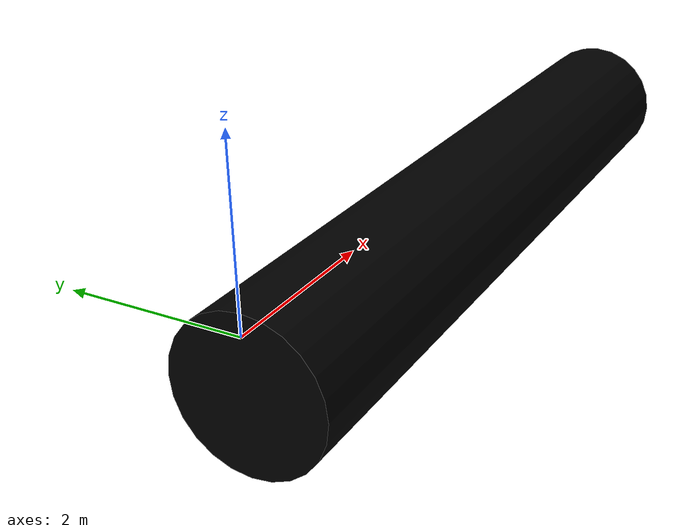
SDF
<?xml version="1.0" ?>
<sdf version="1.6">
  <model name='ridge'>
    <static>true</static>
    <pose>0 0 0.0 0 -0 0</pose>
    <link name='ridge'>
      <pose>5 0 -0.65 0 1.5707 0</pose>
      <visual name='visual'>
        <geometry>
          <cylinder>
            <radius>0.9</radius>
            <length>10.0</length>
          </cylinder>
        </geometry>
        <material>
          <ambient>1.0 0.7 0.5 1</ambient>
          <diffuse>0 0 0 1</diffuse>
          <specular>0 0 0 0</specular>
          <emissive>0 0 0 1</emissive>
        </material>
      </visual>
    </link>
  </model>
</sdf>
